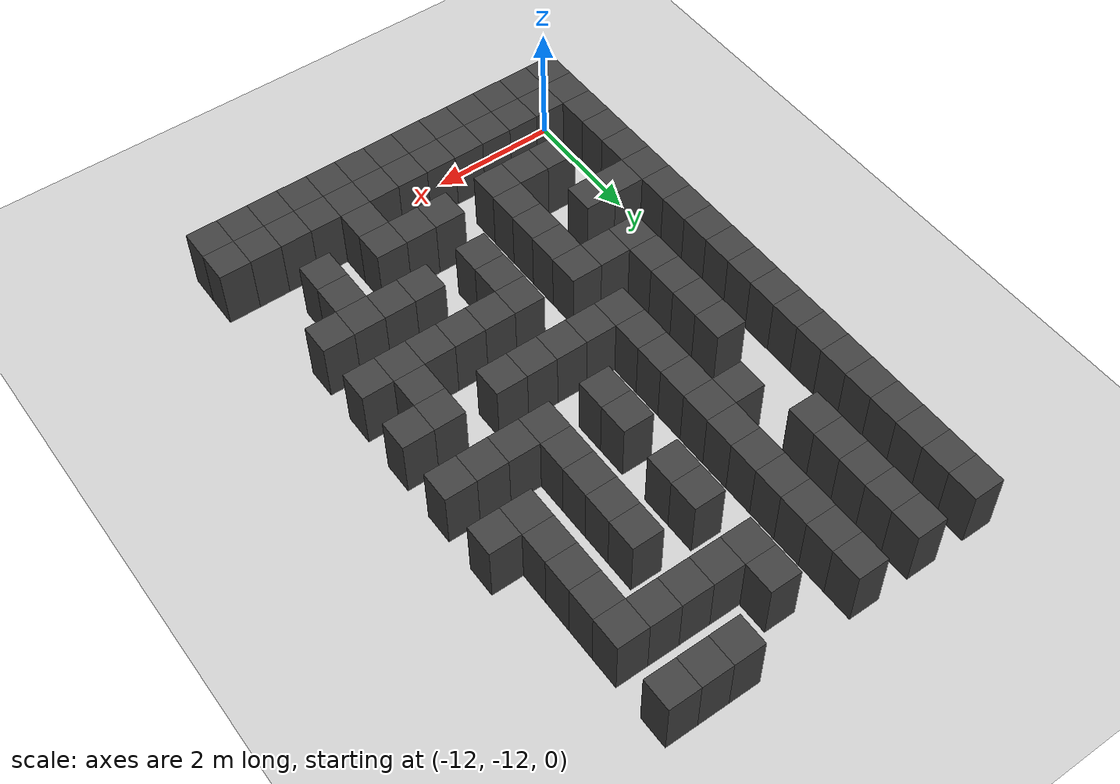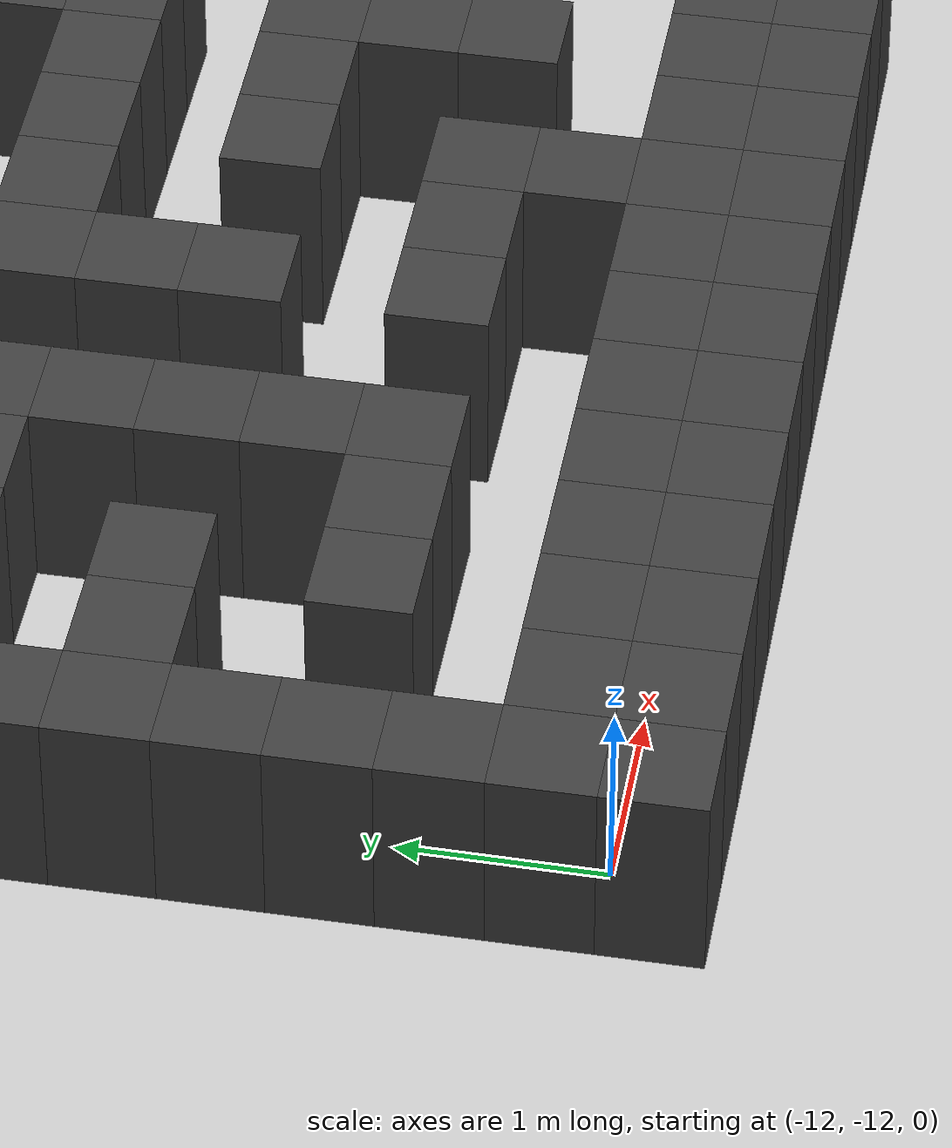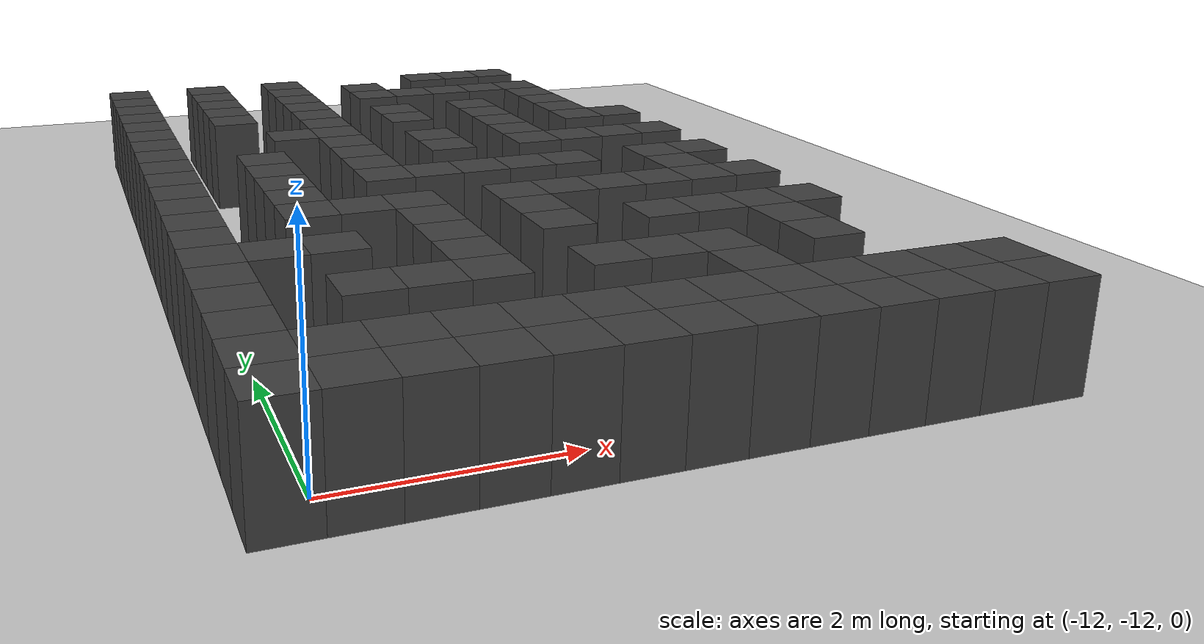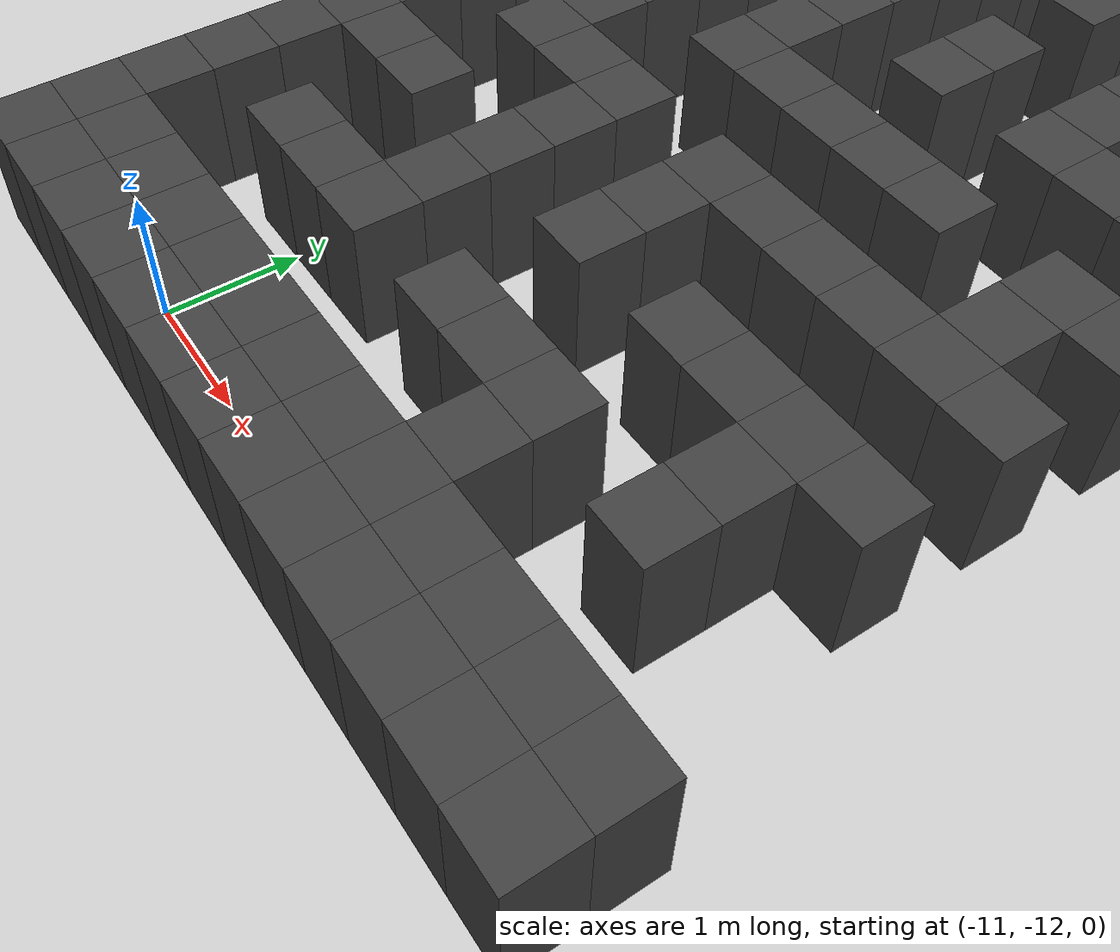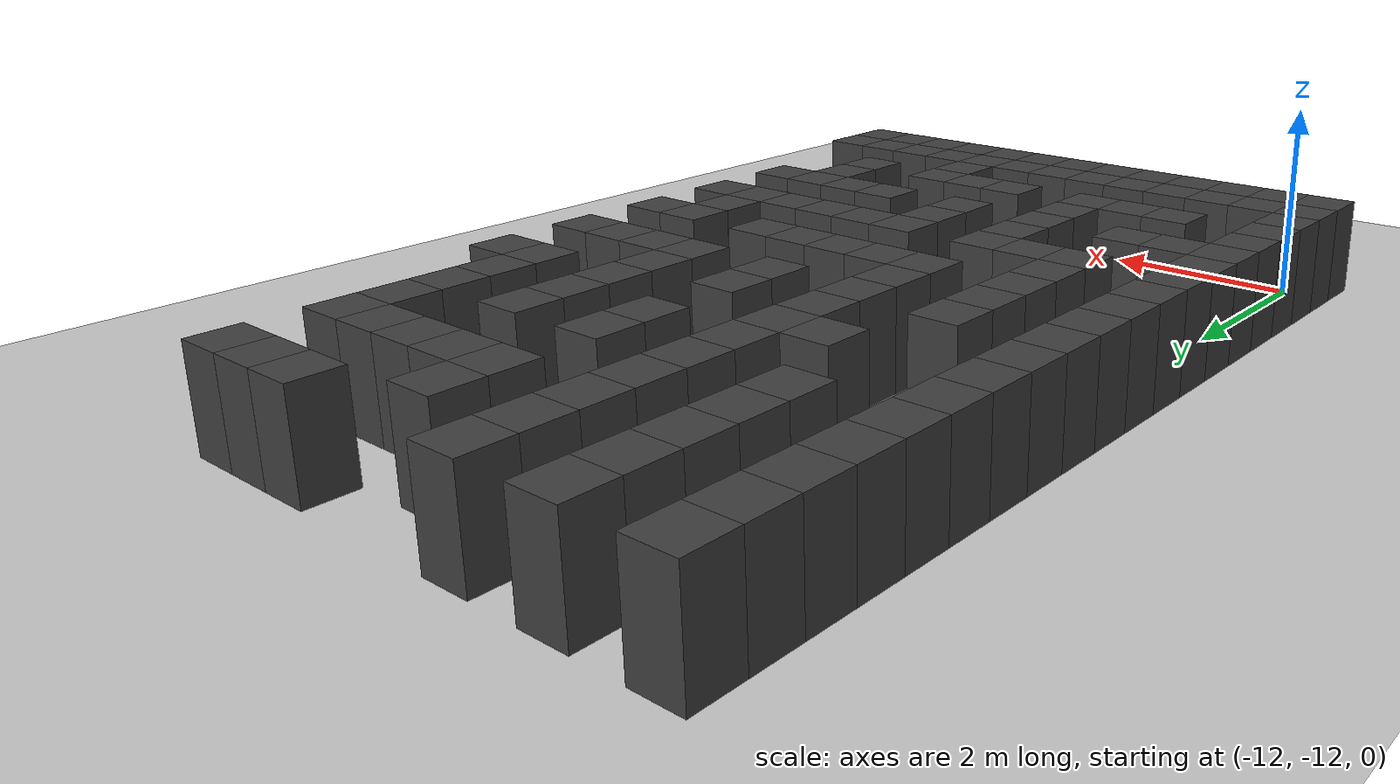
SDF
<sdf version="1.7">
 <world name="map_17663">
  <model name="ground_plane">
   <static>true</static>
   <link name="link">
    <collision name="collision">
     <geometry><plane><normal>0 0 1</normal><size>200 200</size></plane></geometry>
    </collision>
    <visual name="visual">
     <geometry><plane><normal>0 0 1</normal><size>200 200</size></plane></geometry>
     <material><ambient>0.8 0.8 0.8 1</ambient><diffuse>0.8 0.8 0.8 1</diffuse></material>
    </visual>
   </link>
  </model>
  <model name="maze_environment">
   <static>true</static>
   <link name="wall_740">
    <pose>-12.250 -2.750 0.500 0 0 0</pose>
    <collision name="col"><geometry><box><size>0.5 0.5 1.0</size></box></geometry></collision>
    <visual name="vis">
     <geometry><box><size>0.5 0.5 1.0</size></box></geometry>
     <material><ambient>0.15 0.15 0.15 1</ambient><diffuse>0.25 0.25 0.25 1</diffuse></material>
    </visual>
   </link>
   <link name="wall_741">
    <pose>-11.250 -2.750 0.500 0 0 0</pose>
    <collision name="col"><geometry><box><size>0.5 0.5 1.0</size></box></geometry></collision>
    <visual name="vis">
     <geometry><box><size>0.5 0.5 1.0</size></box></geometry>
     <material><ambient>0.15 0.15 0.15 1</ambient><diffuse>0.25 0.25 0.25 1</diffuse></material>
    </visual>
   </link>
   <link name="wall_742">
    <pose>-10.250 -2.750 0.500 0 0 0</pose>
    <collision name="col"><geometry><box><size>0.5 0.5 1.0</size></box></geometry></collision>
    <visual name="vis">
     <geometry><box><size>0.5 0.5 1.0</size></box></geometry>
     <material><ambient>0.15 0.15 0.15 1</ambient><diffuse>0.25 0.25 0.25 1</diffuse></material>
    </visual>
   </link>
   <link name="wall_743">
    <pose>-8.250 -2.750 0.500 0 0 0</pose>
    <collision name="col"><geometry><box><size>0.5 0.5 1.0</size></box></geometry></collision>
    <visual name="vis">
     <geometry><box><size>0.5 0.5 1.0</size></box></geometry>
     <material><ambient>0.15 0.15 0.15 1</ambient><diffuse>0.25 0.25 0.25 1</diffuse></material>
    </visual>
   </link>
   <link name="wall_744">
    <pose>-7.750 -2.750 0.500 0 0 0</pose>
    <collision name="col"><geometry><box><size>0.5 0.5 1.0</size></box></geometry></collision>
    <visual name="vis">
     <geometry><box><size>0.5 0.5 1.0</size></box></geometry>
     <material><ambient>0.15 0.15 0.15 1</ambient><diffuse>0.25 0.25 0.25 1</diffuse></material>
    </visual>
   </link>
   <link name="wall_745">
    <pose>-7.250 -2.750 0.500 0 0 0</pose>
    <collision name="col"><geometry><box><size>0.5 0.5 1.0</size></box></geometry></collision>
    <visual name="vis">
     <geometry><box><size>0.5 0.5 1.0</size></box></geometry>
     <material><ambient>0.15 0.15 0.15 1</ambient><diffuse>0.25 0.25 0.25 1</diffuse></material>
    </visual>
   </link>
   <link name="wall_777">
    <pose>-12.250 -3.250 0.500 0 0 0</pose>
    <collision name="col"><geometry><box><size>0.5 0.5 1.0</size></box></geometry></collision>
    <visual name="vis">
     <geometry><box><size>0.5 0.5 1.0</size></box></geometry>
     <material><ambient>0.15 0.15 0.15 1</ambient><diffuse>0.25 0.25 0.25 1</diffuse></material>
    </visual>
   </link>
   <link name="wall_778">
    <pose>-11.250 -3.250 0.500 0 0 0</pose>
    <collision name="col"><geometry><box><size>0.5 0.5 1.0</size></box></geometry></collision>
    <visual name="vis">
     <geometry><box><size>0.5 0.5 1.0</size></box></geometry>
     <material><ambient>0.15 0.15 0.15 1</ambient><diffuse>0.25 0.25 0.25 1</diffuse></material>
    </visual>
   </link>
   <link name="wall_779">
    <pose>-10.250 -3.250 0.500 0 0 0</pose>
    <collision name="col"><geometry><box><size>0.5 0.5 1.0</size></box></geometry></collision>
    <visual name="vis">
     <geometry><box><size>0.5 0.5 1.0</size></box></geometry>
     <material><ambient>0.15 0.15 0.15 1</ambient><diffuse>0.25 0.25 0.25 1</diffuse></material>
    </visual>
   </link>
   <link name="wall_780">
    <pose>-9.250 -3.250 0.500 0 0 0</pose>
    <collision name="col"><geometry><box><size>0.5 0.5 1.0</size></box></geometry></collision>
    <visual name="vis">
     <geometry><box><size>0.5 0.5 1.0</size></box></geometry>
     <material><ambient>0.15 0.15 0.15 1</ambient><diffuse>0.25 0.25 0.25 1</diffuse></material>
    </visual>
   </link>
   <link name="wall_789">
    <pose>-12.250 -3.750 0.500 0 0 0</pose>
    <collision name="col"><geometry><box><size>0.5 0.5 1.0</size></box></geometry></collision>
    <visual name="vis">
     <geometry><box><size>0.5 0.5 1.0</size></box></geometry>
     <material><ambient>0.15 0.15 0.15 1</ambient><diffuse>0.25 0.25 0.25 1</diffuse></material>
    </visual>
   </link>
   <link name="wall_790">
    <pose>-11.250 -3.750 0.500 0 0 0</pose>
    <collision name="col"><geometry><box><size>0.5 0.5 1.0</size></box></geometry></collision>
    <visual name="vis">
     <geometry><box><size>0.5 0.5 1.0</size></box></geometry>
     <material><ambient>0.15 0.15 0.15 1</ambient><diffuse>0.25 0.25 0.25 1</diffuse></material>
    </visual>
   </link>
   <link name="wall_791">
    <pose>-10.250 -3.750 0.500 0 0 0</pose>
    <collision name="col"><geometry><box><size>0.5 0.5 1.0</size></box></geometry></collision>
    <visual name="vis">
     <geometry><box><size>0.5 0.5 1.0</size></box></geometry>
     <material><ambient>0.15 0.15 0.15 1</ambient><diffuse>0.25 0.25 0.25 1</diffuse></material>
    </visual>
   </link>
   <link name="wall_792">
    <pose>-9.250 -3.750 0.500 0 0 0</pose>
    <collision name="col"><geometry><box><size>0.5 0.5 1.0</size></box></geometry></collision>
    <visual name="vis">
     <geometry><box><size>0.5 0.5 1.0</size></box></geometry>
     <material><ambient>0.15 0.15 0.15 1</ambient><diffuse>0.25 0.25 0.25 1</diffuse></material>
    </visual>
   </link>
   <link name="wall_793">
    <pose>-8.750 -3.750 0.500 0 0 0</pose>
    <collision name="col"><geometry><box><size>0.5 0.5 1.0</size></box></geometry></collision>
    <visual name="vis">
     <geometry><box><size>0.5 0.5 1.0</size></box></geometry>
     <material><ambient>0.15 0.15 0.15 1</ambient><diffuse>0.25 0.25 0.25 1</diffuse></material>
    </visual>
   </link>
   <link name="wall_794">
    <pose>-8.250 -3.750 0.500 0 0 0</pose>
    <collision name="col"><geometry><box><size>0.5 0.5 1.0</size></box></geometry></collision>
    <visual name="vis">
     <geometry><box><size>0.5 0.5 1.0</size></box></geometry>
     <material><ambient>0.15 0.15 0.15 1</ambient><diffuse>0.25 0.25 0.25 1</diffuse></material>
    </visual>
   </link>
   <link name="wall_795">
    <pose>-7.750 -3.750 0.500 0 0 0</pose>
    <collision name="col"><geometry><box><size>0.5 0.5 1.0</size></box></geometry></collision>
    <visual name="vis">
     <geometry><box><size>0.5 0.5 1.0</size></box></geometry>
     <material><ambient>0.15 0.15 0.15 1</ambient><diffuse>0.25 0.25 0.25 1</diffuse></material>
    </visual>
   </link>
   <link name="wall_796">
    <pose>-7.250 -3.750 0.500 0 0 0</pose>
    <collision name="col"><geometry><box><size>0.5 0.5 1.0</size></box></geometry></collision>
    <visual name="vis">
     <geometry><box><size>0.5 0.5 1.0</size></box></geometry>
     <material><ambient>0.15 0.15 0.15 1</ambient><diffuse>0.25 0.25 0.25 1</diffuse></material>
    </visual>
   </link>
   <link name="wall_826">
    <pose>-12.250 -4.250 0.500 0 0 0</pose>
    <collision name="col"><geometry><box><size>0.5 0.5 1.0</size></box></geometry></collision>
    <visual name="vis">
     <geometry><box><size>0.5 0.5 1.0</size></box></geometry>
     <material><ambient>0.15 0.15 0.15 1</ambient><diffuse>0.25 0.25 0.25 1</diffuse></material>
    </visual>
   </link>
   <link name="wall_827">
    <pose>-11.250 -4.250 0.500 0 0 0</pose>
    <collision name="col"><geometry><box><size>0.5 0.5 1.0</size></box></geometry></collision>
    <visual name="vis">
     <geometry><box><size>0.5 0.5 1.0</size></box></geometry>
     <material><ambient>0.15 0.15 0.15 1</ambient><diffuse>0.25 0.25 0.25 1</diffuse></material>
    </visual>
   </link>
   <link name="wall_828">
    <pose>-10.250 -4.250 0.500 0 0 0</pose>
    <collision name="col"><geometry><box><size>0.5 0.5 1.0</size></box></geometry></collision>
    <visual name="vis">
     <geometry><box><size>0.5 0.5 1.0</size></box></geometry>
     <material><ambient>0.15 0.15 0.15 1</ambient><diffuse>0.25 0.25 0.25 1</diffuse></material>
    </visual>
   </link>
   <link name="wall_829">
    <pose>-7.250 -4.250 0.500 0 0 0</pose>
    <collision name="col"><geometry><box><size>0.5 0.5 1.0</size></box></geometry></collision>
    <visual name="vis">
     <geometry><box><size>0.5 0.5 1.0</size></box></geometry>
     <material><ambient>0.15 0.15 0.15 1</ambient><diffuse>0.25 0.25 0.25 1</diffuse></material>
    </visual>
   </link>
   <link name="wall_839">
    <pose>-12.250 -4.750 0.500 0 0 0</pose>
    <collision name="col"><geometry><box><size>0.5 0.5 1.0</size></box></geometry></collision>
    <visual name="vis">
     <geometry><box><size>0.5 0.5 1.0</size></box></geometry>
     <material><ambient>0.15 0.15 0.15 1</ambient><diffuse>0.25 0.25 0.25 1</diffuse></material>
    </visual>
   </link>
   <link name="wall_840">
    <pose>-11.250 -4.750 0.500 0 0 0</pose>
    <collision name="col"><geometry><box><size>0.5 0.5 1.0</size></box></geometry></collision>
    <visual name="vis">
     <geometry><box><size>0.5 0.5 1.0</size></box></geometry>
     <material><ambient>0.15 0.15 0.15 1</ambient><diffuse>0.25 0.25 0.25 1</diffuse></material>
    </visual>
   </link>
   <link name="wall_841">
    <pose>-10.250 -4.750 0.500 0 0 0</pose>
    <collision name="col"><geometry><box><size>0.5 0.5 1.0</size></box></geometry></collision>
    <visual name="vis">
     <geometry><box><size>0.5 0.5 1.0</size></box></geometry>
     <material><ambient>0.15 0.15 0.15 1</ambient><diffuse>0.25 0.25 0.25 1</diffuse></material>
    </visual>
   </link>
   <link name="wall_842">
    <pose>-9.250 -4.750 0.500 0 0 0</pose>
    <collision name="col"><geometry><box><size>0.5 0.5 1.0</size></box></geometry></collision>
    <visual name="vis">
     <geometry><box><size>0.5 0.5 1.0</size></box></geometry>
     <material><ambient>0.15 0.15 0.15 1</ambient><diffuse>0.25 0.25 0.25 1</diffuse></material>
    </visual>
   </link>
   <link name="wall_843">
    <pose>-8.250 -4.750 0.500 0 0 0</pose>
    <collision name="col"><geometry><box><size>0.5 0.5 1.0</size></box></geometry></collision>
    <visual name="vis">
     <geometry><box><size>0.5 0.5 1.0</size></box></geometry>
     <material><ambient>0.15 0.15 0.15 1</ambient><diffuse>0.25 0.25 0.25 1</diffuse></material>
    </visual>
   </link>
   <link name="wall_844">
    <pose>-7.250 -4.750 0.500 0 0 0</pose>
    <collision name="col"><geometry><box><size>0.5 0.5 1.0</size></box></geometry></collision>
    <visual name="vis">
     <geometry><box><size>0.5 0.5 1.0</size></box></geometry>
     <material><ambient>0.15 0.15 0.15 1</ambient><diffuse>0.25 0.25 0.25 1</diffuse></material>
    </visual>
   </link>
   <link name="wall_873">
    <pose>-12.250 -5.250 0.500 0 0 0</pose>
    <collision name="col"><geometry><box><size>0.5 0.5 1.0</size></box></geometry></collision>
    <visual name="vis">
     <geometry><box><size>0.5 0.5 1.0</size></box></geometry>
     <material><ambient>0.15 0.15 0.15 1</ambient><diffuse>0.25 0.25 0.25 1</diffuse></material>
    </visual>
   </link>
   <link name="wall_874">
    <pose>-10.250 -5.250 0.500 0 0 0</pose>
    <collision name="col"><geometry><box><size>0.5 0.5 1.0</size></box></geometry></collision>
    <visual name="vis">
     <geometry><box><size>0.5 0.5 1.0</size></box></geometry>
     <material><ambient>0.15 0.15 0.15 1</ambient><diffuse>0.25 0.25 0.25 1</diffuse></material>
    </visual>
   </link>
   <link name="wall_875">
    <pose>-9.250 -5.250 0.500 0 0 0</pose>
    <collision name="col"><geometry><box><size>0.5 0.5 1.0</size></box></geometry></collision>
    <visual name="vis">
     <geometry><box><size>0.5 0.5 1.0</size></box></geometry>
     <material><ambient>0.15 0.15 0.15 1</ambient><diffuse>0.25 0.25 0.25 1</diffuse></material>
    </visual>
   </link>
   <link name="wall_876">
    <pose>-8.250 -5.250 0.500 0 0 0</pose>
    <collision name="col"><geometry><box><size>0.5 0.5 1.0</size></box></geometry></collision>
    <visual name="vis">
     <geometry><box><size>0.5 0.5 1.0</size></box></geometry>
     <material><ambient>0.15 0.15 0.15 1</ambient><diffuse>0.25 0.25 0.25 1</diffuse></material>
    </visual>
   </link>
   <link name="wall_877">
    <pose>-7.250 -5.250 0.500 0 0 0</pose>
    <collision name="col"><geometry><box><size>0.5 0.5 1.0</size></box></geometry></collision>
    <visual name="vis">
     <geometry><box><size>0.5 0.5 1.0</size></box></geometry>
     <material><ambient>0.15 0.15 0.15 1</ambient><diffuse>0.25 0.25 0.25 1</diffuse></material>
    </visual>
   </link>
   <link name="wall_890">
    <pose>-12.250 -5.750 0.500 0 0 0</pose>
    <collision name="col"><geometry><box><size>0.5 0.5 1.0</size></box></geometry></collision>
    <visual name="vis">
     <geometry><box><size>0.5 0.5 1.0</size></box></geometry>
     <material><ambient>0.15 0.15 0.15 1</ambient><diffuse>0.25 0.25 0.25 1</diffuse></material>
    </visual>
   </link>
   <link name="wall_891">
    <pose>-10.750 -5.750 0.500 0 0 0</pose>
    <collision name="col"><geometry><box><size>0.5 0.5 1.0</size></box></geometry></collision>
    <visual name="vis">
     <geometry><box><size>0.5 0.5 1.0</size></box></geometry>
     <material><ambient>0.15 0.15 0.15 1</ambient><diffuse>0.25 0.25 0.25 1</diffuse></material>
    </visual>
   </link>
   <link name="wall_892">
    <pose>-10.250 -5.750 0.500 0 0 0</pose>
    <collision name="col"><geometry><box><size>0.5 0.5 1.0</size></box></geometry></collision>
    <visual name="vis">
     <geometry><box><size>0.5 0.5 1.0</size></box></geometry>
     <material><ambient>0.15 0.15 0.15 1</ambient><diffuse>0.25 0.25 0.25 1</diffuse></material>
    </visual>
   </link>
   <link name="wall_893">
    <pose>-8.250 -5.750 0.500 0 0 0</pose>
    <collision name="col"><geometry><box><size>0.5 0.5 1.0</size></box></geometry></collision>
    <visual name="vis">
     <geometry><box><size>0.5 0.5 1.0</size></box></geometry>
     <material><ambient>0.15 0.15 0.15 1</ambient><diffuse>0.25 0.25 0.25 1</diffuse></material>
    </visual>
   </link>
   <link name="wall_894">
    <pose>-7.250 -5.750 0.500 0 0 0</pose>
    <collision name="col"><geometry><box><size>0.5 0.5 1.0</size></box></geometry></collision>
    <visual name="vis">
     <geometry><box><size>0.5 0.5 1.0</size></box></geometry>
     <material><ambient>0.15 0.15 0.15 1</ambient><diffuse>0.25 0.25 0.25 1</diffuse></material>
    </visual>
   </link>
   <link name="wall_895">
    <pose>-6.750 -5.750 0.500 0 0 0</pose>
    <collision name="col"><geometry><box><size>0.5 0.5 1.0</size></box></geometry></collision>
    <visual name="vis">
     <geometry><box><size>0.5 0.5 1.0</size></box></geometry>
     <material><ambient>0.15 0.15 0.15 1</ambient><diffuse>0.25 0.25 0.25 1</diffuse></material>
    </visual>
   </link>
   <link name="wall_920">
    <pose>-12.250 -6.250 0.500 0 0 0</pose>
    <collision name="col"><geometry><box><size>0.5 0.5 1.0</size></box></geometry></collision>
    <visual name="vis">
     <geometry><box><size>0.5 0.5 1.0</size></box></geometry>
     <material><ambient>0.15 0.15 0.15 1</ambient><diffuse>0.25 0.25 0.25 1</diffuse></material>
    </visual>
   </link>
   <link name="wall_921">
    <pose>-10.250 -6.250 0.500 0 0 0</pose>
    <collision name="col"><geometry><box><size>0.5 0.5 1.0</size></box></geometry></collision>
    <visual name="vis">
     <geometry><box><size>0.5 0.5 1.0</size></box></geometry>
     <material><ambient>0.15 0.15 0.15 1</ambient><diffuse>0.25 0.25 0.25 1</diffuse></material>
    </visual>
   </link>
   <link name="wall_922">
    <pose>-9.250 -6.250 0.500 0 0 0</pose>
    <collision name="col"><geometry><box><size>0.5 0.5 1.0</size></box></geometry></collision>
    <visual name="vis">
     <geometry><box><size>0.5 0.5 1.0</size></box></geometry>
     <material><ambient>0.15 0.15 0.15 1</ambient><diffuse>0.25 0.25 0.25 1</diffuse></material>
    </visual>
   </link>
   <link name="wall_923">
    <pose>-8.250 -6.250 0.500 0 0 0</pose>
    <collision name="col"><geometry><box><size>0.5 0.5 1.0</size></box></geometry></collision>
    <visual name="vis">
     <geometry><box><size>0.5 0.5 1.0</size></box></geometry>
     <material><ambient>0.15 0.15 0.15 1</ambient><diffuse>0.25 0.25 0.25 1</diffuse></material>
    </visual>
   </link>
   <link name="wall_934">
    <pose>-12.250 -6.750 0.500 0 0 0</pose>
    <collision name="col"><geometry><box><size>0.5 0.5 1.0</size></box></geometry></collision>
    <visual name="vis">
     <geometry><box><size>0.5 0.5 1.0</size></box></geometry>
     <material><ambient>0.15 0.15 0.15 1</ambient><diffuse>0.25 0.25 0.25 1</diffuse></material>
    </visual>
   </link>
   <link name="wall_935">
    <pose>-11.250 -6.750 0.500 0 0 0</pose>
    <collision name="col"><geometry><box><size>0.5 0.5 1.0</size></box></geometry></collision>
    <visual name="vis">
     <geometry><box><size>0.5 0.5 1.0</size></box></geometry>
     <material><ambient>0.15 0.15 0.15 1</ambient><diffuse>0.25 0.25 0.25 1</diffuse></material>
    </visual>
   </link>
   <link name="wall_936">
    <pose>-10.250 -6.750 0.500 0 0 0</pose>
    <collision name="col"><geometry><box><size>0.5 0.5 1.0</size></box></geometry></collision>
    <visual name="vis">
     <geometry><box><size>0.5 0.5 1.0</size></box></geometry>
     <material><ambient>0.15 0.15 0.15 1</ambient><diffuse>0.25 0.25 0.25 1</diffuse></material>
    </visual>
   </link>
   <link name="wall_937">
    <pose>-9.250 -6.750 0.500 0 0 0</pose>
    <collision name="col"><geometry><box><size>0.5 0.5 1.0</size></box></geometry></collision>
    <visual name="vis">
     <geometry><box><size>0.5 0.5 1.0</size></box></geometry>
     <material><ambient>0.15 0.15 0.15 1</ambient><diffuse>0.25 0.25 0.25 1</diffuse></material>
    </visual>
   </link>
   <link name="wall_938">
    <pose>-8.250 -6.750 0.500 0 0 0</pose>
    <collision name="col"><geometry><box><size>0.5 0.5 1.0</size></box></geometry></collision>
    <visual name="vis">
     <geometry><box><size>0.5 0.5 1.0</size></box></geometry>
     <material><ambient>0.15 0.15 0.15 1</ambient><diffuse>0.25 0.25 0.25 1</diffuse></material>
    </visual>
   </link>
   <link name="wall_939">
    <pose>-7.750 -6.750 0.500 0 0 0</pose>
    <collision name="col"><geometry><box><size>0.5 0.5 1.0</size></box></geometry></collision>
    <visual name="vis">
     <geometry><box><size>0.5 0.5 1.0</size></box></geometry>
     <material><ambient>0.15 0.15 0.15 1</ambient><diffuse>0.25 0.25 0.25 1</diffuse></material>
    </visual>
   </link>
   <link name="wall_940">
    <pose>-7.250 -6.750 0.500 0 0 0</pose>
    <collision name="col"><geometry><box><size>0.5 0.5 1.0</size></box></geometry></collision>
    <visual name="vis">
     <geometry><box><size>0.5 0.5 1.0</size></box></geometry>
     <material><ambient>0.15 0.15 0.15 1</ambient><diffuse>0.25 0.25 0.25 1</diffuse></material>
    </visual>
   </link>
   <link name="wall_941">
    <pose>-6.750 -6.750 0.500 0 0 0</pose>
    <collision name="col"><geometry><box><size>0.5 0.5 1.0</size></box></geometry></collision>
    <visual name="vis">
     <geometry><box><size>0.5 0.5 1.0</size></box></geometry>
     <material><ambient>0.15 0.15 0.15 1</ambient><diffuse>0.25 0.25 0.25 1</diffuse></material>
    </visual>
   </link>
   <link name="wall_974">
    <pose>-12.250 -7.250 0.500 0 0 0</pose>
    <collision name="col"><geometry><box><size>0.5 0.5 1.0</size></box></geometry></collision>
    <visual name="vis">
     <geometry><box><size>0.5 0.5 1.0</size></box></geometry>
     <material><ambient>0.15 0.15 0.15 1</ambient><diffuse>0.25 0.25 0.25 1</diffuse></material>
    </visual>
   </link>
   <link name="wall_975">
    <pose>-11.250 -7.250 0.500 0 0 0</pose>
    <collision name="col"><geometry><box><size>0.5 0.5 1.0</size></box></geometry></collision>
    <visual name="vis">
     <geometry><box><size>0.5 0.5 1.0</size></box></geometry>
     <material><ambient>0.15 0.15 0.15 1</ambient><diffuse>0.25 0.25 0.25 1</diffuse></material>
    </visual>
   </link>
   <link name="wall_976">
    <pose>-10.250 -7.250 0.500 0 0 0</pose>
    <collision name="col"><geometry><box><size>0.5 0.5 1.0</size></box></geometry></collision>
    <visual name="vis">
     <geometry><box><size>0.5 0.5 1.0</size></box></geometry>
     <material><ambient>0.15 0.15 0.15 1</ambient><diffuse>0.25 0.25 0.25 1</diffuse></material>
    </visual>
   </link>
   <link name="wall_987">
    <pose>-12.250 -7.750 0.500 0 0 0</pose>
    <collision name="col"><geometry><box><size>0.5 0.5 1.0</size></box></geometry></collision>
    <visual name="vis">
     <geometry><box><size>0.5 0.5 1.0</size></box></geometry>
     <material><ambient>0.15 0.15 0.15 1</ambient><diffuse>0.25 0.25 0.25 1</diffuse></material>
    </visual>
   </link>
   <link name="wall_988">
    <pose>-11.250 -7.750 0.500 0 0 0</pose>
    <collision name="col"><geometry><box><size>0.5 0.5 1.0</size></box></geometry></collision>
    <visual name="vis">
     <geometry><box><size>0.5 0.5 1.0</size></box></geometry>
     <material><ambient>0.15 0.15 0.15 1</ambient><diffuse>0.25 0.25 0.25 1</diffuse></material>
    </visual>
   </link>
   <link name="wall_989">
    <pose>-10.250 -7.750 0.500 0 0 0</pose>
    <collision name="col"><geometry><box><size>0.5 0.5 1.0</size></box></geometry></collision>
    <visual name="vis">
     <geometry><box><size>0.5 0.5 1.0</size></box></geometry>
     <material><ambient>0.15 0.15 0.15 1</ambient><diffuse>0.25 0.25 0.25 1</diffuse></material>
    </visual>
   </link>
   <link name="wall_990">
    <pose>-9.750 -7.750 0.500 0 0 0</pose>
    <collision name="col"><geometry><box><size>0.5 0.5 1.0</size></box></geometry></collision>
    <visual name="vis">
     <geometry><box><size>0.5 0.5 1.0</size></box></geometry>
     <material><ambient>0.15 0.15 0.15 1</ambient><diffuse>0.25 0.25 0.25 1</diffuse></material>
    </visual>
   </link>
   <link name="wall_991">
    <pose>-9.250 -7.750 0.500 0 0 0</pose>
    <collision name="col"><geometry><box><size>0.5 0.5 1.0</size></box></geometry></collision>
    <visual name="vis">
     <geometry><box><size>0.5 0.5 1.0</size></box></geometry>
     <material><ambient>0.15 0.15 0.15 1</ambient><diffuse>0.25 0.25 0.25 1</diffuse></material>
    </visual>
   </link>
   <link name="wall_992">
    <pose>-8.750 -7.750 0.500 0 0 0</pose>
    <collision name="col"><geometry><box><size>0.5 0.5 1.0</size></box></geometry></collision>
    <visual name="vis">
     <geometry><box><size>0.5 0.5 1.0</size></box></geometry>
     <material><ambient>0.15 0.15 0.15 1</ambient><diffuse>0.25 0.25 0.25 1</diffuse></material>
    </visual>
   </link>
   <link name="wall_993">
    <pose>-8.250 -7.750 0.500 0 0 0</pose>
    <collision name="col"><geometry><box><size>0.5 0.5 1.0</size></box></geometry></collision>
    <visual name="vis">
     <geometry><box><size>0.5 0.5 1.0</size></box></geometry>
     <material><ambient>0.15 0.15 0.15 1</ambient><diffuse>0.25 0.25 0.25 1</diffuse></material>
    </visual>
   </link>
   <link name="wall_994">
    <pose>-7.250 -7.750 0.500 0 0 0</pose>
    <collision name="col"><geometry><box><size>0.5 0.5 1.0</size></box></geometry></collision>
    <visual name="vis">
     <geometry><box><size>0.5 0.5 1.0</size></box></geometry>
     <material><ambient>0.15 0.15 0.15 1</ambient><diffuse>0.25 0.25 0.25 1</diffuse></material>
    </visual>
   </link>
   <link name="wall_995">
    <pose>-6.750 -7.750 0.500 0 0 0</pose>
    <collision name="col"><geometry><box><size>0.5 0.5 1.0</size></box></geometry></collision>
    <visual name="vis">
     <geometry><box><size>0.5 0.5 1.0</size></box></geometry>
     <material><ambient>0.15 0.15 0.15 1</ambient><diffuse>0.25 0.25 0.25 1</diffuse></material>
    </visual>
   </link>
   <link name="wall_1020">
    <pose>-12.250 -8.250 0.500 0 0 0</pose>
    <collision name="col"><geometry><box><size>0.5 0.5 1.0</size></box></geometry></collision>
    <visual name="vis">
     <geometry><box><size>0.5 0.5 1.0</size></box></geometry>
     <material><ambient>0.15 0.15 0.15 1</ambient><diffuse>0.25 0.25 0.25 1</diffuse></material>
    </visual>
   </link>
   <link name="wall_1021">
    <pose>-11.250 -8.250 0.500 0 0 0</pose>
    <collision name="col"><geometry><box><size>0.5 0.5 1.0</size></box></geometry></collision>
    <visual name="vis">
     <geometry><box><size>0.5 0.5 1.0</size></box></geometry>
     <material><ambient>0.15 0.15 0.15 1</ambient><diffuse>0.25 0.25 0.25 1</diffuse></material>
    </visual>
   </link>
   <link name="wall_1022">
    <pose>-7.250 -8.250 0.500 0 0 0</pose>
    <collision name="col"><geometry><box><size>0.5 0.5 1.0</size></box></geometry></collision>
    <visual name="vis">
     <geometry><box><size>0.5 0.5 1.0</size></box></geometry>
     <material><ambient>0.15 0.15 0.15 1</ambient><diffuse>0.25 0.25 0.25 1</diffuse></material>
    </visual>
   </link>
   <link name="wall_1035">
    <pose>-12.250 -8.750 0.500 0 0 0</pose>
    <collision name="col"><geometry><box><size>0.5 0.5 1.0</size></box></geometry></collision>
    <visual name="vis">
     <geometry><box><size>0.5 0.5 1.0</size></box></geometry>
     <material><ambient>0.15 0.15 0.15 1</ambient><diffuse>0.25 0.25 0.25 1</diffuse></material>
    </visual>
   </link>
   <link name="wall_1036">
    <pose>-11.250 -8.750 0.500 0 0 0</pose>
    <collision name="col"><geometry><box><size>0.5 0.5 1.0</size></box></geometry></collision>
    <visual name="vis">
     <geometry><box><size>0.5 0.5 1.0</size></box></geometry>
     <material><ambient>0.15 0.15 0.15 1</ambient><diffuse>0.25 0.25 0.25 1</diffuse></material>
    </visual>
   </link>
   <link name="wall_1037">
    <pose>-10.750 -8.750 0.500 0 0 0</pose>
    <collision name="col"><geometry><box><size>0.5 0.5 1.0</size></box></geometry></collision>
    <visual name="vis">
     <geometry><box><size>0.5 0.5 1.0</size></box></geometry>
     <material><ambient>0.15 0.15 0.15 1</ambient><diffuse>0.25 0.25 0.25 1</diffuse></material>
    </visual>
   </link>
   <link name="wall_1038">
    <pose>-10.250 -8.750 0.500 0 0 0</pose>
    <collision name="col"><geometry><box><size>0.5 0.5 1.0</size></box></geometry></collision>
    <visual name="vis">
     <geometry><box><size>0.5 0.5 1.0</size></box></geometry>
     <material><ambient>0.15 0.15 0.15 1</ambient><diffuse>0.25 0.25 0.25 1</diffuse></material>
    </visual>
   </link>
   <link name="wall_1039">
    <pose>-9.250 -8.750 0.500 0 0 0</pose>
    <collision name="col"><geometry><box><size>0.5 0.5 1.0</size></box></geometry></collision>
    <visual name="vis">
     <geometry><box><size>0.5 0.5 1.0</size></box></geometry>
     <material><ambient>0.15 0.15 0.15 1</ambient><diffuse>0.25 0.25 0.25 1</diffuse></material>
    </visual>
   </link>
   <link name="wall_1040">
    <pose>-8.750 -8.750 0.500 0 0 0</pose>
    <collision name="col"><geometry><box><size>0.5 0.5 1.0</size></box></geometry></collision>
    <visual name="vis">
     <geometry><box><size>0.5 0.5 1.0</size></box></geometry>
     <material><ambient>0.15 0.15 0.15 1</ambient><diffuse>0.25 0.25 0.25 1</diffuse></material>
    </visual>
   </link>
   <link name="wall_1041">
    <pose>-8.250 -8.750 0.500 0 0 0</pose>
    <collision name="col"><geometry><box><size>0.5 0.5 1.0</size></box></geometry></collision>
    <visual name="vis">
     <geometry><box><size>0.5 0.5 1.0</size></box></geometry>
     <material><ambient>0.15 0.15 0.15 1</ambient><diffuse>0.25 0.25 0.25 1</diffuse></material>
    </visual>
   </link>
   <link name="wall_1042">
    <pose>-7.750 -8.750 0.500 0 0 0</pose>
    <collision name="col"><geometry><box><size>0.5 0.5 1.0</size></box></geometry></collision>
    <visual name="vis">
     <geometry><box><size>0.5 0.5 1.0</size></box></geometry>
     <material><ambient>0.15 0.15 0.15 1</ambient><diffuse>0.25 0.25 0.25 1</diffuse></material>
    </visual>
   </link>
   <link name="wall_1043">
    <pose>-7.250 -8.750 0.500 0 0 0</pose>
    <collision name="col"><geometry><box><size>0.5 0.5 1.0</size></box></geometry></collision>
    <visual name="vis">
     <geometry><box><size>0.5 0.5 1.0</size></box></geometry>
     <material><ambient>0.15 0.15 0.15 1</ambient><diffuse>0.25 0.25 0.25 1</diffuse></material>
    </visual>
   </link>
   <link name="wall_1044">
    <pose>-6.750 -8.750 0.500 0 0 0</pose>
    <collision name="col"><geometry><box><size>0.5 0.5 1.0</size></box></geometry></collision>
    <visual name="vis">
     <geometry><box><size>0.5 0.5 1.0</size></box></geometry>
     <material><ambient>0.15 0.15 0.15 1</ambient><diffuse>0.25 0.25 0.25 1</diffuse></material>
    </visual>
   </link>
   <link name="wall_1069">
    <pose>-12.250 -9.250 0.500 0 0 0</pose>
    <collision name="col"><geometry><box><size>0.5 0.5 1.0</size></box></geometry></collision>
    <visual name="vis">
     <geometry><box><size>0.5 0.5 1.0</size></box></geometry>
     <material><ambient>0.15 0.15 0.15 1</ambient><diffuse>0.25 0.25 0.25 1</diffuse></material>
    </visual>
   </link>
   <link name="wall_1070">
    <pose>-10.250 -9.250 0.500 0 0 0</pose>
    <collision name="col"><geometry><box><size>0.5 0.5 1.0</size></box></geometry></collision>
    <visual name="vis">
     <geometry><box><size>0.5 0.5 1.0</size></box></geometry>
     <material><ambient>0.15 0.15 0.15 1</ambient><diffuse>0.25 0.25 0.25 1</diffuse></material>
    </visual>
   </link>
   <link name="wall_1071">
    <pose>-9.250 -9.250 0.500 0 0 0</pose>
    <collision name="col"><geometry><box><size>0.5 0.5 1.0</size></box></geometry></collision>
    <visual name="vis">
     <geometry><box><size>0.5 0.5 1.0</size></box></geometry>
     <material><ambient>0.15 0.15 0.15 1</ambient><diffuse>0.25 0.25 0.25 1</diffuse></material>
    </visual>
   </link>
   <link name="wall_1084">
    <pose>-12.250 -9.750 0.500 0 0 0</pose>
    <collision name="col"><geometry><box><size>0.5 0.5 1.0</size></box></geometry></collision>
    <visual name="vis">
     <geometry><box><size>0.5 0.5 1.0</size></box></geometry>
     <material><ambient>0.15 0.15 0.15 1</ambient><diffuse>0.25 0.25 0.25 1</diffuse></material>
    </visual>
   </link>
   <link name="wall_1085">
    <pose>-11.750 -9.750 0.500 0 0 0</pose>
    <collision name="col"><geometry><box><size>0.5 0.5 1.0</size></box></geometry></collision>
    <visual name="vis">
     <geometry><box><size>0.5 0.5 1.0</size></box></geometry>
     <material><ambient>0.15 0.15 0.15 1</ambient><diffuse>0.25 0.25 0.25 1</diffuse></material>
    </visual>
   </link>
   <link name="wall_1086">
    <pose>-11.250 -9.750 0.500 0 0 0</pose>
    <collision name="col"><geometry><box><size>0.5 0.5 1.0</size></box></geometry></collision>
    <visual name="vis">
     <geometry><box><size>0.5 0.5 1.0</size></box></geometry>
     <material><ambient>0.15 0.15 0.15 1</ambient><diffuse>0.25 0.25 0.25 1</diffuse></material>
    </visual>
   </link>
   <link name="wall_1087">
    <pose>-10.250 -9.750 0.500 0 0 0</pose>
    <collision name="col"><geometry><box><size>0.5 0.5 1.0</size></box></geometry></collision>
    <visual name="vis">
     <geometry><box><size>0.5 0.5 1.0</size></box></geometry>
     <material><ambient>0.15 0.15 0.15 1</ambient><diffuse>0.25 0.25 0.25 1</diffuse></material>
    </visual>
   </link>
   <link name="wall_1088">
    <pose>-9.250 -9.750 0.500 0 0 0</pose>
    <collision name="col"><geometry><box><size>0.5 0.5 1.0</size></box></geometry></collision>
    <visual name="vis">
     <geometry><box><size>0.5 0.5 1.0</size></box></geometry>
     <material><ambient>0.15 0.15 0.15 1</ambient><diffuse>0.25 0.25 0.25 1</diffuse></material>
    </visual>
   </link>
   <link name="wall_1089">
    <pose>-8.250 -9.750 0.500 0 0 0</pose>
    <collision name="col"><geometry><box><size>0.5 0.5 1.0</size></box></geometry></collision>
    <visual name="vis">
     <geometry><box><size>0.5 0.5 1.0</size></box></geometry>
     <material><ambient>0.15 0.15 0.15 1</ambient><diffuse>0.25 0.25 0.25 1</diffuse></material>
    </visual>
   </link>
   <link name="wall_1090">
    <pose>-7.750 -9.750 0.500 0 0 0</pose>
    <collision name="col"><geometry><box><size>0.5 0.5 1.0</size></box></geometry></collision>
    <visual name="vis">
     <geometry><box><size>0.5 0.5 1.0</size></box></geometry>
     <material><ambient>0.15 0.15 0.15 1</ambient><diffuse>0.25 0.25 0.25 1</diffuse></material>
    </visual>
   </link>
   <link name="wall_1091">
    <pose>-7.250 -9.750 0.500 0 0 0</pose>
    <collision name="col"><geometry><box><size>0.5 0.5 1.0</size></box></geometry></collision>
    <visual name="vis">
     <geometry><box><size>0.5 0.5 1.0</size></box></geometry>
     <material><ambient>0.15 0.15 0.15 1</ambient><diffuse>0.25 0.25 0.25 1</diffuse></material>
    </visual>
   </link>
   <link name="wall_1092">
    <pose>-6.750 -9.750 0.500 0 0 0</pose>
    <collision name="col"><geometry><box><size>0.5 0.5 1.0</size></box></geometry></collision>
    <visual name="vis">
     <geometry><box><size>0.5 0.5 1.0</size></box></geometry>
     <material><ambient>0.15 0.15 0.15 1</ambient><diffuse>0.25 0.25 0.25 1</diffuse></material>
    </visual>
   </link>
   <link name="wall_1120">
    <pose>-12.250 -10.250 0.500 0 0 0</pose>
    <collision name="col"><geometry><box><size>0.5 0.5 1.0</size></box></geometry></collision>
    <visual name="vis">
     <geometry><box><size>0.5 0.5 1.0</size></box></geometry>
     <material><ambient>0.15 0.15 0.15 1</ambient><diffuse>0.25 0.25 0.25 1</diffuse></material>
    </visual>
   </link>
   <link name="wall_1121">
    <pose>-10.250 -10.250 0.500 0 0 0</pose>
    <collision name="col"><geometry><box><size>0.5 0.5 1.0</size></box></geometry></collision>
    <visual name="vis">
     <geometry><box><size>0.5 0.5 1.0</size></box></geometry>
     <material><ambient>0.15 0.15 0.15 1</ambient><diffuse>0.25 0.25 0.25 1</diffuse></material>
    </visual>
   </link>
   <link name="wall_1122">
    <pose>-7.250 -10.250 0.500 0 0 0</pose>
    <collision name="col"><geometry><box><size>0.5 0.5 1.0</size></box></geometry></collision>
    <visual name="vis">
     <geometry><box><size>0.5 0.5 1.0</size></box></geometry>
     <material><ambient>0.15 0.15 0.15 1</ambient><diffuse>0.25 0.25 0.25 1</diffuse></material>
    </visual>
   </link>
   <link name="wall_1134">
    <pose>-12.250 -10.750 0.500 0 0 0</pose>
    <collision name="col"><geometry><box><size>0.5 0.5 1.0</size></box></geometry></collision>
    <visual name="vis">
     <geometry><box><size>0.5 0.5 1.0</size></box></geometry>
     <material><ambient>0.15 0.15 0.15 1</ambient><diffuse>0.25 0.25 0.25 1</diffuse></material>
    </visual>
   </link>
   <link name="wall_1135">
    <pose>-11.250 -10.750 0.500 0 0 0</pose>
    <collision name="col"><geometry><box><size>0.5 0.5 1.0</size></box></geometry></collision>
    <visual name="vis">
     <geometry><box><size>0.5 0.5 1.0</size></box></geometry>
     <material><ambient>0.15 0.15 0.15 1</ambient><diffuse>0.25 0.25 0.25 1</diffuse></material>
    </visual>
   </link>
   <link name="wall_1136">
    <pose>-10.750 -10.750 0.500 0 0 0</pose>
    <collision name="col"><geometry><box><size>0.5 0.5 1.0</size></box></geometry></collision>
    <visual name="vis">
     <geometry><box><size>0.5 0.5 1.0</size></box></geometry>
     <material><ambient>0.15 0.15 0.15 1</ambient><diffuse>0.25 0.25 0.25 1</diffuse></material>
    </visual>
   </link>
   <link name="wall_1137">
    <pose>-10.250 -10.750 0.500 0 0 0</pose>
    <collision name="col"><geometry><box><size>0.5 0.5 1.0</size></box></geometry></collision>
    <visual name="vis">
     <geometry><box><size>0.5 0.5 1.0</size></box></geometry>
     <material><ambient>0.15 0.15 0.15 1</ambient><diffuse>0.25 0.25 0.25 1</diffuse></material>
    </visual>
   </link>
   <link name="wall_1138">
    <pose>-9.250 -10.750 0.500 0 0 0</pose>
    <collision name="col"><geometry><box><size>0.5 0.5 1.0</size></box></geometry></collision>
    <visual name="vis">
     <geometry><box><size>0.5 0.5 1.0</size></box></geometry>
     <material><ambient>0.15 0.15 0.15 1</ambient><diffuse>0.25 0.25 0.25 1</diffuse></material>
    </visual>
   </link>
   <link name="wall_1139">
    <pose>-8.750 -10.750 0.500 0 0 0</pose>
    <collision name="col"><geometry><box><size>0.5 0.5 1.0</size></box></geometry></collision>
    <visual name="vis">
     <geometry><box><size>0.5 0.5 1.0</size></box></geometry>
     <material><ambient>0.15 0.15 0.15 1</ambient><diffuse>0.25 0.25 0.25 1</diffuse></material>
    </visual>
   </link>
   <link name="wall_1140">
    <pose>-8.250 -10.750 0.500 0 0 0</pose>
    <collision name="col"><geometry><box><size>0.5 0.5 1.0</size></box></geometry></collision>
    <visual name="vis">
     <geometry><box><size>0.5 0.5 1.0</size></box></geometry>
     <material><ambient>0.15 0.15 0.15 1</ambient><diffuse>0.25 0.25 0.25 1</diffuse></material>
    </visual>
   </link>
   <link name="wall_1141">
    <pose>-7.250 -10.750 0.500 0 0 0</pose>
    <collision name="col"><geometry><box><size>0.5 0.5 1.0</size></box></geometry></collision>
    <visual name="vis">
     <geometry><box><size>0.5 0.5 1.0</size></box></geometry>
     <material><ambient>0.15 0.15 0.15 1</ambient><diffuse>0.25 0.25 0.25 1</diffuse></material>
    </visual>
   </link>
   <link name="wall_1169">
    <pose>-12.250 -11.250 0.500 0 0 0</pose>
    <collision name="col"><geometry><box><size>0.5 0.5 1.0</size></box></geometry></collision>
    <visual name="vis">
     <geometry><box><size>0.5 0.5 1.0</size></box></geometry>
     <material><ambient>0.15 0.15 0.15 1</ambient><diffuse>0.25 0.25 0.25 1</diffuse></material>
    </visual>
   </link>
   <link name="wall_1170">
    <pose>-8.250 -11.250 0.500 0 0 0</pose>
    <collision name="col"><geometry><box><size>0.5 0.5 1.0</size></box></geometry></collision>
    <visual name="vis">
     <geometry><box><size>0.5 0.5 1.0</size></box></geometry>
     <material><ambient>0.15 0.15 0.15 1</ambient><diffuse>0.25 0.25 0.25 1</diffuse></material>
    </visual>
   </link>
   <link name="wall_1176">
    <pose>-12.250 -11.750 0.500 0 0 0</pose>
    <collision name="col"><geometry><box><size>0.5 0.5 1.0</size></box></geometry></collision>
    <visual name="vis">
     <geometry><box><size>0.5 0.5 1.0</size></box></geometry>
     <material><ambient>0.15 0.15 0.15 1</ambient><diffuse>0.25 0.25 0.25 1</diffuse></material>
    </visual>
   </link>
   <link name="wall_1177">
    <pose>-11.750 -11.750 0.500 0 0 0</pose>
    <collision name="col"><geometry><box><size>0.5 0.5 1.0</size></box></geometry></collision>
    <visual name="vis">
     <geometry><box><size>0.5 0.5 1.0</size></box></geometry>
     <material><ambient>0.15 0.15 0.15 1</ambient><diffuse>0.25 0.25 0.25 1</diffuse></material>
    </visual>
   </link>
   <link name="wall_1178">
    <pose>-11.250 -11.750 0.500 0 0 0</pose>
    <collision name="col"><geometry><box><size>0.5 0.5 1.0</size></box></geometry></collision>
    <visual name="vis">
     <geometry><box><size>0.5 0.5 1.0</size></box></geometry>
     <material><ambient>0.15 0.15 0.15 1</ambient><diffuse>0.25 0.25 0.25 1</diffuse></material>
    </visual>
   </link>
   <link name="wall_1179">
    <pose>-10.750 -11.750 0.500 0 0 0</pose>
    <collision name="col"><geometry><box><size>0.5 0.5 1.0</size></box></geometry></collision>
    <visual name="vis">
     <geometry><box><size>0.5 0.5 1.0</size></box></geometry>
     <material><ambient>0.15 0.15 0.15 1</ambient><diffuse>0.25 0.25 0.25 1</diffuse></material>
    </visual>
   </link>
   <link name="wall_1180">
    <pose>-10.250 -11.750 0.500 0 0 0</pose>
    <collision name="col"><geometry><box><size>0.5 0.5 1.0</size></box></geometry></collision>
    <visual name="vis">
     <geometry><box><size>0.5 0.5 1.0</size></box></geometry>
     <material><ambient>0.15 0.15 0.15 1</ambient><diffuse>0.25 0.25 0.25 1</diffuse></material>
    </visual>
   </link>
   <link name="wall_1181">
    <pose>-9.750 -11.750 0.500 0 0 0</pose>
    <collision name="col"><geometry><box><size>0.5 0.5 1.0</size></box></geometry></collision>
    <visual name="vis">
     <geometry><box><size>0.5 0.5 1.0</size></box></geometry>
     <material><ambient>0.15 0.15 0.15 1</ambient><diffuse>0.25 0.25 0.25 1</diffuse></material>
    </visual>
   </link>
   <link name="wall_1182">
    <pose>-9.250 -11.750 0.500 0 0 0</pose>
    <collision name="col"><geometry><box><size>0.5 0.5 1.0</size></box></geometry></collision>
    <visual name="vis">
     <geometry><box><size>0.5 0.5 1.0</size></box></geometry>
     <material><ambient>0.15 0.15 0.15 1</ambient><diffuse>0.25 0.25 0.25 1</diffuse></material>
    </visual>
   </link>
   <link name="wall_1183">
    <pose>-8.750 -11.750 0.500 0 0 0</pose>
    <collision name="col"><geometry><box><size>0.5 0.5 1.0</size></box></geometry></collision>
    <visual name="vis">
     <geometry><box><size>0.5 0.5 1.0</size></box></geometry>
     <material><ambient>0.15 0.15 0.15 1</ambient><diffuse>0.25 0.25 0.25 1</diffuse></material>
    </visual>
   </link>
   <link name="wall_1184">
    <pose>-8.250 -11.750 0.500 0 0 0</pose>
    <collision name="col"><geometry><box><size>0.5 0.5 1.0</size></box></geometry></collision>
    <visual name="vis">
     <geometry><box><size>0.5 0.5 1.0</size></box></geometry>
     <material><ambient>0.15 0.15 0.15 1</ambient><diffuse>0.25 0.25 0.25 1</diffuse></material>
    </visual>
   </link>
   <link name="wall_1185">
    <pose>-7.750 -11.750 0.500 0 0 0</pose>
    <collision name="col"><geometry><box><size>0.5 0.5 1.0</size></box></geometry></collision>
    <visual name="vis">
     <geometry><box><size>0.5 0.5 1.0</size></box></geometry>
     <material><ambient>0.15 0.15 0.15 1</ambient><diffuse>0.25 0.25 0.25 1</diffuse></material>
    </visual>
   </link>
   <link name="wall_1186">
    <pose>-7.250 -11.750 0.500 0 0 0</pose>
    <collision name="col"><geometry><box><size>0.5 0.5 1.0</size></box></geometry></collision>
    <visual name="vis">
     <geometry><box><size>0.5 0.5 1.0</size></box></geometry>
     <material><ambient>0.15 0.15 0.15 1</ambient><diffuse>0.25 0.25 0.25 1</diffuse></material>
    </visual>
   </link>
   <link name="wall_1187">
    <pose>-6.750 -11.750 0.500 0 0 0</pose>
    <collision name="col"><geometry><box><size>0.5 0.5 1.0</size></box></geometry></collision>
    <visual name="vis">
     <geometry><box><size>0.5 0.5 1.0</size></box></geometry>
     <material><ambient>0.15 0.15 0.15 1</ambient><diffuse>0.25 0.25 0.25 1</diffuse></material>
    </visual>
   </link>
   <link name="wall_1188">
    <pose>-6.250 -11.750 0.500 0 0 0</pose>
    <collision name="col"><geometry><box><size>0.5 0.5 1.0</size></box></geometry></collision>
    <visual name="vis">
     <geometry><box><size>0.5 0.5 1.0</size></box></geometry>
     <material><ambient>0.15 0.15 0.15 1</ambient><diffuse>0.25 0.25 0.25 1</diffuse></material>
    </visual>
   </link>
   <link name="wall_1224">
    <pose>-12.250 -12.250 0.500 0 0 0</pose>
    <collision name="col"><geometry><box><size>0.5 0.5 1.0</size></box></geometry></collision>
    <visual name="vis">
     <geometry><box><size>0.5 0.5 1.0</size></box></geometry>
     <material><ambient>0.15 0.15 0.15 1</ambient><diffuse>0.25 0.25 0.25 1</diffuse></material>
    </visual>
   </link>
   <link name="wall_1225">
    <pose>-11.750 -12.250 0.500 0 0 0</pose>
    <collision name="col"><geometry><box><size>0.5 0.5 1.0</size></box></geometry></collision>
    <visual name="vis">
     <geometry><box><size>0.5 0.5 1.0</size></box></geometry>
     <material><ambient>0.15 0.15 0.15 1</ambient><diffuse>0.25 0.25 0.25 1</diffuse></material>
    </visual>
   </link>
   <link name="wall_1226">
    <pose>-11.250 -12.250 0.500 0 0 0</pose>
    <collision name="col"><geometry><box><size>0.5 0.5 1.0</size></box></geometry></collision>
    <visual name="vis">
     <geometry><box><size>0.5 0.5 1.0</size></box></geometry>
     <material><ambient>0.15 0.15 0.15 1</ambient><diffuse>0.25 0.25 0.25 1</diffuse></material>
    </visual>
   </link>
   <link name="wall_1227">
    <pose>-10.750 -12.250 0.500 0 0 0</pose>
    <collision name="col"><geometry><box><size>0.5 0.5 1.0</size></box></geometry></collision>
    <visual name="vis">
     <geometry><box><size>0.5 0.5 1.0</size></box></geometry>
     <material><ambient>0.15 0.15 0.15 1</ambient><diffuse>0.25 0.25 0.25 1</diffuse></material>
    </visual>
   </link>
   <link name="wall_1228">
    <pose>-10.250 -12.250 0.500 0 0 0</pose>
    <collision name="col"><geometry><box><size>0.5 0.5 1.0</size></box></geometry></collision>
    <visual name="vis">
     <geometry><box><size>0.5 0.5 1.0</size></box></geometry>
     <material><ambient>0.15 0.15 0.15 1</ambient><diffuse>0.25 0.25 0.25 1</diffuse></material>
    </visual>
   </link>
   <link name="wall_1229">
    <pose>-9.750 -12.250 0.500 0 0 0</pose>
    <collision name="col"><geometry><box><size>0.5 0.5 1.0</size></box></geometry></collision>
    <visual name="vis">
     <geometry><box><size>0.5 0.5 1.0</size></box></geometry>
     <material><ambient>0.15 0.15 0.15 1</ambient><diffuse>0.25 0.25 0.25 1</diffuse></material>
    </visual>
   </link>
   <link name="wall_1230">
    <pose>-9.250 -12.250 0.500 0 0 0</pose>
    <collision name="col"><geometry><box><size>0.5 0.5 1.0</size></box></geometry></collision>
    <visual name="vis">
     <geometry><box><size>0.5 0.5 1.0</size></box></geometry>
     <material><ambient>0.15 0.15 0.15 1</ambient><diffuse>0.25 0.25 0.25 1</diffuse></material>
    </visual>
   </link>
   <link name="wall_1231">
    <pose>-8.750 -12.250 0.500 0 0 0</pose>
    <collision name="col"><geometry><box><size>0.5 0.5 1.0</size></box></geometry></collision>
    <visual name="vis">
     <geometry><box><size>0.5 0.5 1.0</size></box></geometry>
     <material><ambient>0.15 0.15 0.15 1</ambient><diffuse>0.25 0.25 0.25 1</diffuse></material>
    </visual>
   </link>
   <link name="wall_1232">
    <pose>-8.250 -12.250 0.500 0 0 0</pose>
    <collision name="col"><geometry><box><size>0.5 0.5 1.0</size></box></geometry></collision>
    <visual name="vis">
     <geometry><box><size>0.5 0.5 1.0</size></box></geometry>
     <material><ambient>0.15 0.15 0.15 1</ambient><diffuse>0.25 0.25 0.25 1</diffuse></material>
    </visual>
   </link>
   <link name="wall_1233">
    <pose>-7.750 -12.250 0.500 0 0 0</pose>
    <collision name="col"><geometry><box><size>0.5 0.5 1.0</size></box></geometry></collision>
    <visual name="vis">
     <geometry><box><size>0.5 0.5 1.0</size></box></geometry>
     <material><ambient>0.15 0.15 0.15 1</ambient><diffuse>0.25 0.25 0.25 1</diffuse></material>
    </visual>
   </link>
   <link name="wall_1234">
    <pose>-7.250 -12.250 0.500 0 0 0</pose>
    <collision name="col"><geometry><box><size>0.5 0.5 1.0</size></box></geometry></collision>
    <visual name="vis">
     <geometry><box><size>0.5 0.5 1.0</size></box></geometry>
     <material><ambient>0.15 0.15 0.15 1</ambient><diffuse>0.25 0.25 0.25 1</diffuse></material>
    </visual>
   </link>
   <link name="wall_1235">
    <pose>-6.750 -12.250 0.500 0 0 0</pose>
    <collision name="col"><geometry><box><size>0.5 0.5 1.0</size></box></geometry></collision>
    <visual name="vis">
     <geometry><box><size>0.5 0.5 1.0</size></box></geometry>
     <material><ambient>0.15 0.15 0.15 1</ambient><diffuse>0.25 0.25 0.25 1</diffuse></material>
    </visual>
   </link>
   <link name="wall_1236">
    <pose>-6.250 -12.250 0.500 0 0 0</pose>
    <collision name="col"><geometry><box><size>0.5 0.5 1.0</size></box></geometry></collision>
    <visual name="vis">
     <geometry><box><size>0.5 0.5 1.0</size></box></geometry>
     <material><ambient>0.15 0.15 0.15 1</ambient><diffuse>0.25 0.25 0.25 1</diffuse></material>
    </visual>
   </link>
  </model>
 </world>
</sdf>
